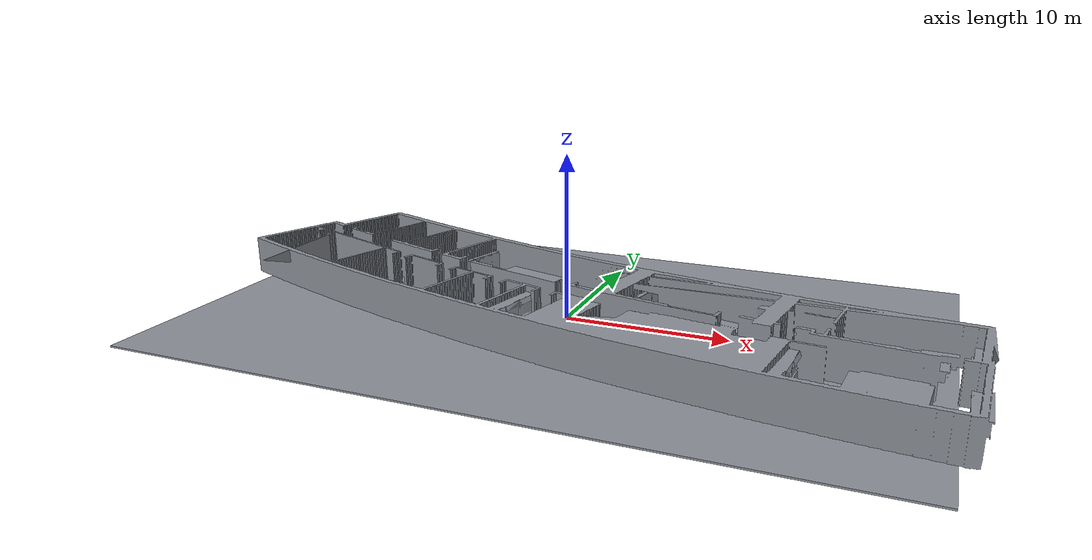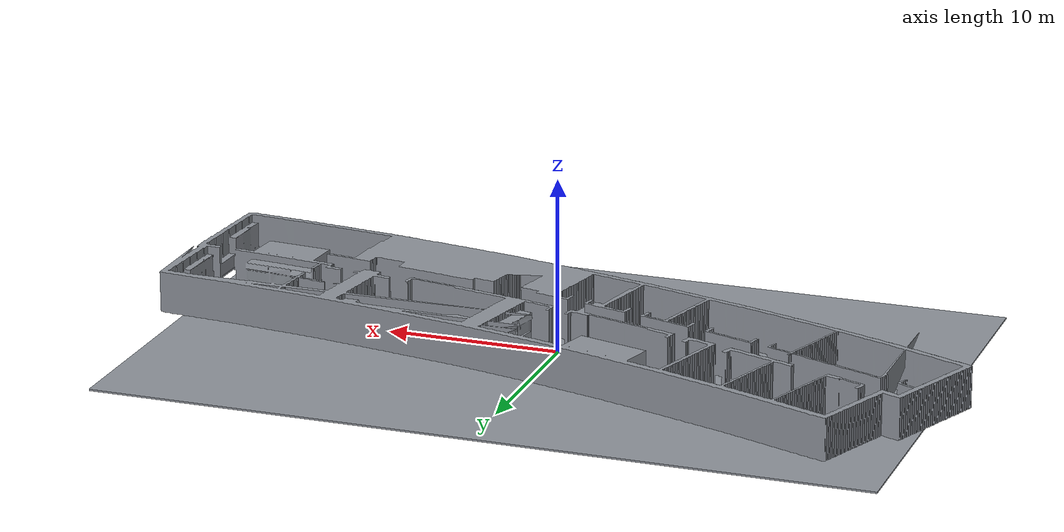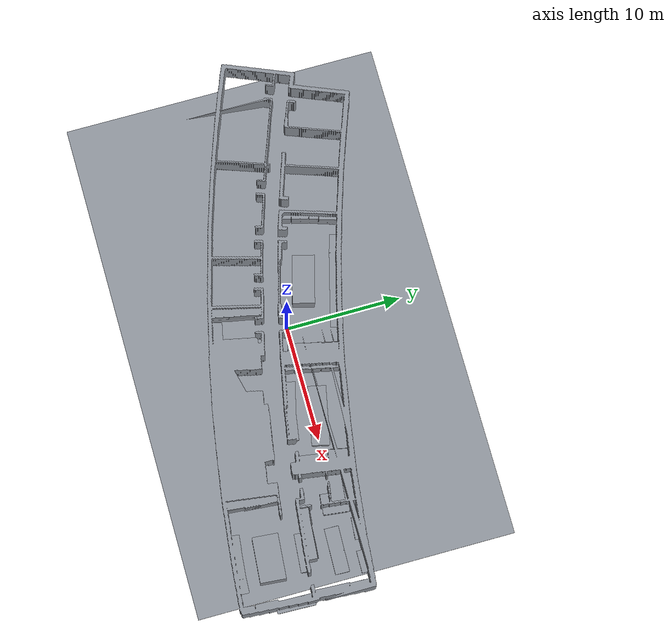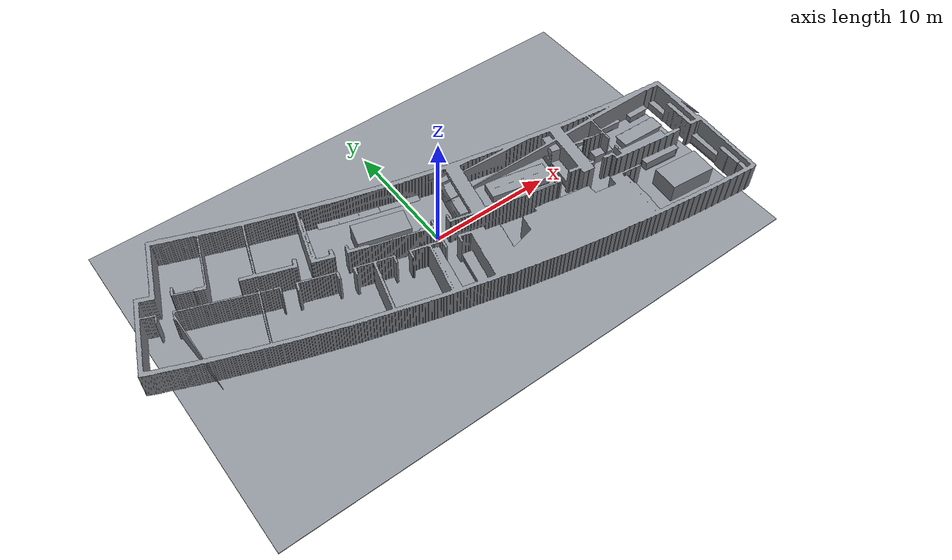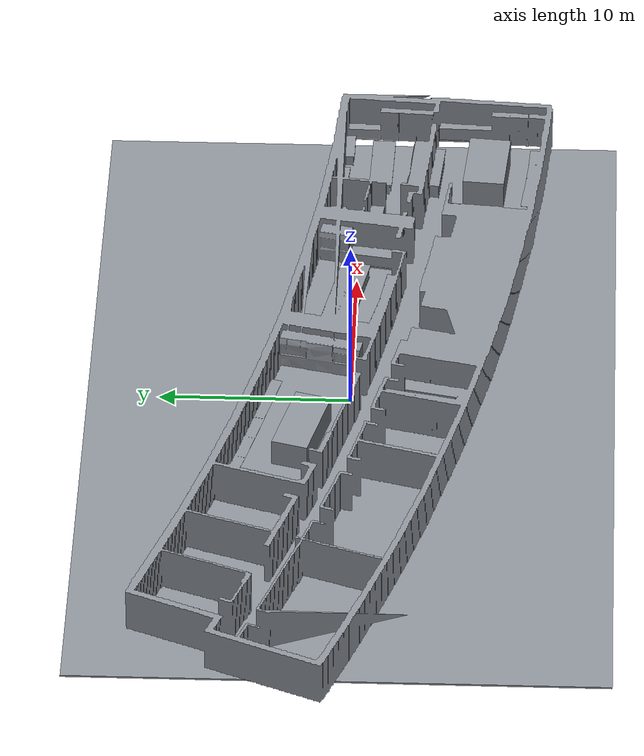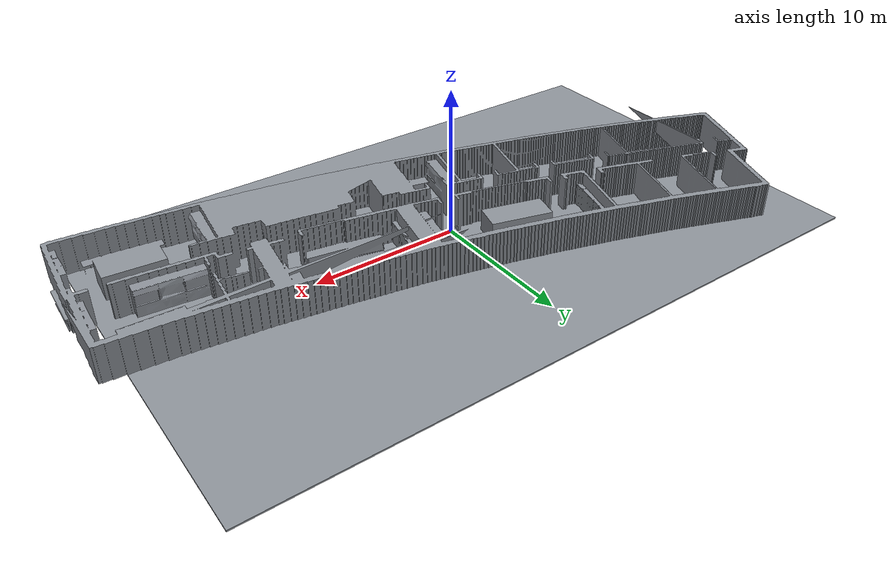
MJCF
<!-- Generated by robot_lab_maps/tools/gen_mjcf_worlds.py from
     maps/celisca_floor_2_furniture/worlds/celisca_floor_2_furniture.world - do not edit by hand. -->
<mujoco model="celisca_floor_2_furniture">
  <option gravity="0 0 -9.81" />
  <compiler angle="radian" />
  <asset>
    <mesh name="celisca_floor_2_furniture_collision" file="/workspace/molar/ros_ws/bumperbot_ws/src/robot_lab_maps/maps/celisca_floor_2_furniture/meshes/celisca_floor_2_furniture_collision.stl" scale="0.79695 0.79695 0.79695" />
  </asset>
  <worldbody>
    <geom type="plane" size="22 13.75 0.1" contype="0" conaffinity="0" rgba="0.35 0.37 0.4 1" />
    <geom pos="0 0 -0.05" quat="1 0 0 0" rgba="0.55 0.57 0.6 1" type="box" size="22 13.75 0.05" />
    <geom pos="1.188 -3.564 0" quat="1 0 0 0" rgba="0.55 0.57 0.6 1" type="mesh" mesh="celisca_floor_2_furniture_collision" />
    <light diffuse="0.8 0.8 0.8" pos="0 0 10" dir="0 0 -1" castshadow="true" />
    <light diffuse="0.3 0.3 0.3" pos="0 -6 6" dir="0 1 -1" />
  </worldbody>
</mujoco>
